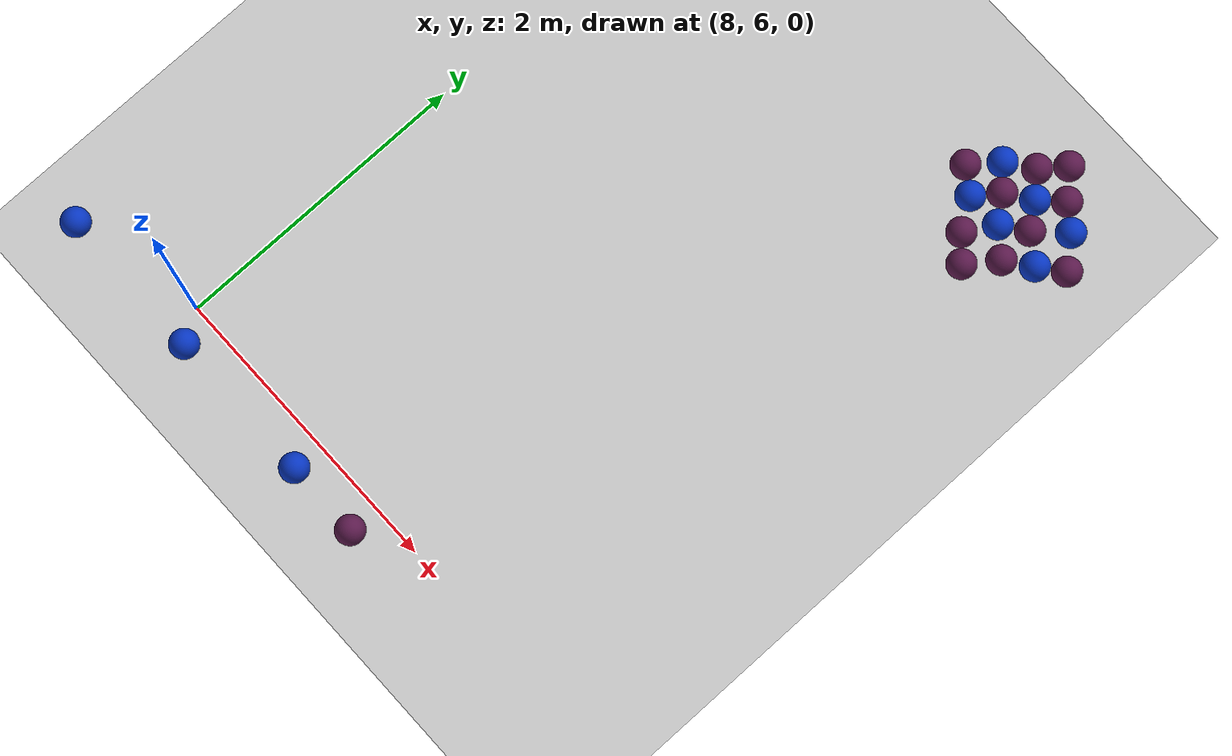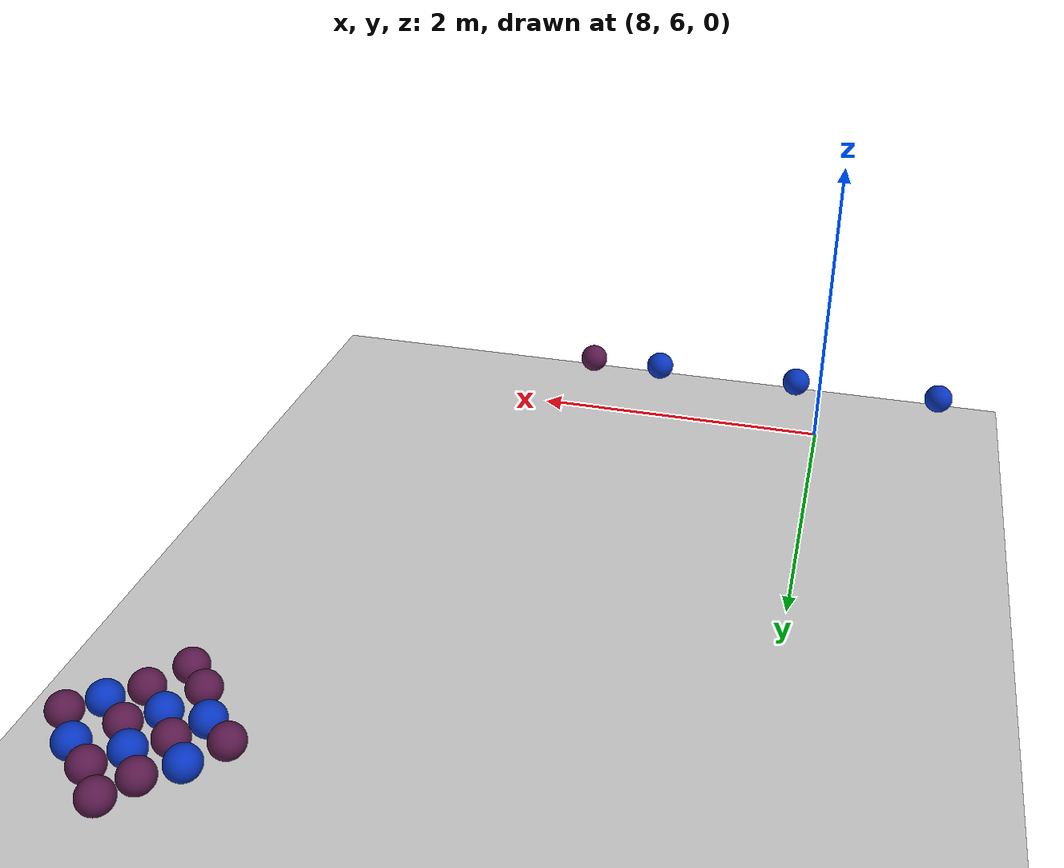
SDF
<sdf version="1.7">
 <world name="default">
  <model name="ground_plane">
   <static>1</static>
   <link name="link">
    <collision name="collision">
     <geometry><plane><normal>0 0 1</normal><size>100 100</size></plane></geometry>
     <surface>
      <contact><collide_bitmask>65535</collide_bitmask></contact>
      <friction><ode><mu>100</mu><mu2>50</mu2></ode></friction>
     </surface>
    </collision>
    <visual name="visual">
     <cast_shadows>0</cast_shadows>
     <geometry><plane><normal>0 0 1</normal><size>100 100</size></plane></geometry>
     <material>
      <script><uri>file://media/materials/scripts/gazebo.material</uri><name>Gazebo/Grey</name></script>
     </material>
    </visual>
   </link>
  </model>
  <model name="ball_empty_clone_9">
   <link name="link_1">
    <inertial>
     <mass>1</mass>
     <inertia>
      <ixx>0.166667</ixx>
      <ixy>0</ixy>
      <ixz>0</ixz>
      <iyy>0.166667</iyy>
      <iyz>0</iyz>
      <izz>0.166667</izz>
     </inertia>
    </inertial>
    <visual name="visual">
     <geometry>
      <mesh>
       <uri>/home/entity014/abu2024_ws/src/abu_description/worlds/ball_empty.dae</uri>
       <scale>1 1 1</scale>
      </mesh>
     </geometry>
    </visual>
    <collision name="collision">
     <geometry>
      <mesh>
       <uri>/home/entity014/abu2024_ws/src/abu_description/worlds/ball_empty.dae</uri>
       <scale>1 1 1</scale>
      </mesh>
     </geometry>
     <surface>
      <friction>
       <ode><mu>1</mu><mu2>1</mu2><fdir1>0 0 0</fdir1><slip1>0</slip1><slip2>0</slip2></ode>
       <torsional>
        <coefficient>1</coefficient>
        <patch_radius>0</patch_radius>
        <surface_radius>0</surface_radius>
        <use_patch_radius>1</use_patch_radius>
        <ode><slip>0</slip></ode>
       </torsional>
      </friction>
      <bounce><restitution_coefficient>0</restitution_coefficient><threshold>1e+06</threshold></bounce>
      <contact>
       <collide_without_contact>0</collide_without_contact>
       <collide_without_contact_bitmask>1</collide_without_contact_bitmask>
       <collide_bitmask>1</collide_bitmask>
       <ode>
        <soft_cfm>0</soft_cfm>
        <soft_erp>0.2</soft_erp>
        <kp>1e+13</kp>
        <kd>1</kd>
        <max_vel>0.01</max_vel>
        <min_depth>0</min_depth>
       </ode>
       <bullet>
        <split_impulse>1</split_impulse>
        <split_impulse_penetration_threshold>-0.01</split_impulse_penetration_threshold>
        <soft_cfm>0</soft_cfm>
        <soft_erp>0.2</soft_erp>
        <kp>1e+13</kp>
        <kd>1</kd>
       </bullet>
      </contact>
     </surface>
    </collision>
   </link>
   <static>0</static>
   <pose>9.68167 5.79272 0.302541 -0.15648 0.3284 -0.083313</pose>
  </model>
  <model name="ball_blue">
   <link name="link_1">
    <inertial>
     <mass>1</mass>
     <inertia>
      <ixx>0.166667</ixx>
      <ixy>0</ixy>
      <ixz>0</ixz>
      <iyy>0.166667</iyy>
      <iyz>0</iyz>
      <izz>0.166667</izz>
     </inertia>
    </inertial>
    <visual name="visual">
     <geometry>
      <mesh>
       <uri>/home/entity014/abu2024_ws/src/abu_description/worlds/ball_blue.dae</uri>
       <scale>1 1 1</scale>
      </mesh>
     </geometry>
    </visual>
    <collision name="collision">
     <geometry>
      <mesh>
       <uri>/home/entity014/abu2024_ws/src/abu_description/worlds/ball_blue.dae</uri>
       <scale>1 1 1</scale>
      </mesh>
     </geometry>
     <surface>
      <friction>
       <ode><mu>1</mu><mu2>1</mu2><fdir1>0 0 0</fdir1><slip1>0</slip1><slip2>0</slip2></ode>
       <torsional>
        <coefficient>1</coefficient>
        <patch_radius>0</patch_radius>
        <surface_radius>0</surface_radius>
        <use_patch_radius>1</use_patch_radius>
        <ode><slip>0</slip></ode>
       </torsional>
      </friction>
      <bounce><restitution_coefficient>0</restitution_coefficient><threshold>1e+06</threshold></bounce>
      <contact>
       <collide_without_contact>0</collide_without_contact>
       <collide_without_contact_bitmask>1</collide_without_contact_bitmask>
       <collide_bitmask>1</collide_bitmask>
       <ode>
        <soft_cfm>0</soft_cfm>
        <soft_erp>0.2</soft_erp>
        <kp>1e+13</kp>
        <kd>1</kd>
        <max_vel>0.01</max_vel>
        <min_depth>0</min_depth>
       </ode>
       <bullet>
        <split_impulse>1</split_impulse>
        <split_impulse_penetration_threshold>-0.01</split_impulse_penetration_threshold>
        <soft_cfm>0</soft_cfm>
        <soft_erp>0.2</soft_erp>
        <kp>1e+13</kp>
        <kd>1</kd>
       </bullet>
      </contact>
     </surface>
    </collision>
   </link>
   <static>0</static>
   <pose>7.18264 5.79369 0.302534 0.095236 -0.074696 0.040586</pose>
  </model>
  <model name="ball_blue_0">
   <link name="link_1">
    <inertial>
     <mass>1</mass>
     <inertia>
      <ixx>0.166667</ixx>
      <ixy>0</ixy>
      <ixz>0</ixz>
      <iyy>0.166667</iyy>
      <iyz>0</iyz>
      <izz>0.166667</izz>
     </inertia>
    </inertial>
    <visual name="visual">
     <geometry>
      <mesh>
       <uri>/home/entity014/abu2024_ws/src/abu_description/worlds/ball_blue.dae</uri>
       <scale>1 1 1</scale>
      </mesh>
     </geometry>
    </visual>
    <collision name="collision">
     <geometry>
      <mesh>
       <uri>/home/entity014/abu2024_ws/src/abu_description/worlds/ball_blue.dae</uri>
       <scale>1 1 1</scale>
      </mesh>
     </geometry>
     <surface>
      <friction>
       <ode><mu>1</mu><mu2>1</mu2><fdir1>0 0 0</fdir1><slip1>0</slip1><slip2>0</slip2></ode>
       <torsional>
        <coefficient>1</coefficient>
        <patch_radius>0</patch_radius>
        <surface_radius>0</surface_radius>
        <use_patch_radius>1</use_patch_radius>
        <ode><slip>0</slip></ode>
       </torsional>
      </friction>
      <bounce><restitution_coefficient>0</restitution_coefficient><threshold>1e+06</threshold></bounce>
      <contact>
       <collide_without_contact>0</collide_without_contact>
       <collide_without_contact_bitmask>1</collide_without_contact_bitmask>
       <collide_bitmask>1</collide_bitmask>
       <ode>
        <soft_cfm>0</soft_cfm>
        <soft_erp>0.2</soft_erp>
        <kp>1e+13</kp>
        <kd>1</kd>
        <max_vel>0.01</max_vel>
        <min_depth>0</min_depth>
       </ode>
       <bullet>
        <split_impulse>1</split_impulse>
        <split_impulse_penetration_threshold>-0.01</split_impulse_penetration_threshold>
        <soft_cfm>0</soft_cfm>
        <soft_erp>0.2</soft_erp>
        <kp>1e+13</kp>
        <kd>1</kd>
       </bullet>
      </contact>
     </surface>
    </collision>
   </link>
   <static>0</static>
   <pose>8.18199 5.79261 0.302561 0.235409 -0.369323 0.277172</pose>
  </model>
  <model name="ball_blue_4">
   <link name="link_1">
    <inertial>
     <mass>1</mass>
     <inertia>
      <ixx>0.166667</ixx>
      <ixy>0</ixy>
      <ixz>0</ixz>
      <iyy>0.166667</iyy>
      <iyz>0</iyz>
      <izz>0.166667</izz>
     </inertia>
    </inertial>
    <visual name="visual">
     <geometry>
      <mesh>
       <uri>/home/entity014/abu2024_ws/src/abu_description/worlds/ball_blue.dae</uri>
       <scale>1 1 1</scale>
      </mesh>
     </geometry>
    </visual>
    <collision name="collision">
     <geometry>
      <mesh>
       <uri>/home/entity014/abu2024_ws/src/abu_description/worlds/ball_blue.dae</uri>
       <scale>1 1 1</scale>
      </mesh>
     </geometry>
     <surface>
      <friction>
       <ode><mu>1</mu><mu2>1</mu2><fdir1>0 0 0</fdir1><slip1>0</slip1><slip2>0</slip2></ode>
       <torsional>
        <coefficient>1</coefficient>
        <patch_radius>0</patch_radius>
        <surface_radius>0</surface_radius>
        <use_patch_radius>1</use_patch_radius>
        <ode><slip>0</slip></ode>
       </torsional>
      </friction>
      <bounce><restitution_coefficient>0</restitution_coefficient><threshold>1e+06</threshold></bounce>
      <contact>
       <collide_without_contact>0</collide_without_contact>
       <collide_without_contact_bitmask>1</collide_without_contact_bitmask>
       <collide_bitmask>1</collide_bitmask>
       <ode>
        <soft_cfm>0</soft_cfm>
        <soft_erp>0.2</soft_erp>
        <kp>1e+13</kp>
        <kd>1</kd>
        <max_vel>0.01</max_vel>
        <min_depth>0</min_depth>
       </ode>
       <bullet>
        <split_impulse>1</split_impulse>
        <split_impulse_penetration_threshold>-0.01</split_impulse_penetration_threshold>
        <soft_cfm>0</soft_cfm>
        <soft_erp>0.2</soft_erp>
        <kp>1e+13</kp>
        <kd>1</kd>
       </bullet>
      </contact>
     </surface>
    </collision>
   </link>
   <static>0</static>
   <pose>9.18234 5.79125 0.302543 0.200935 0.01564 -0.50788</pose>
  </model>
  <model name="ball_empty_0">
   <link name="link_1">
    <inertial>
     <mass>1</mass>
     <inertia>
      <ixx>0.166667</ixx>
      <ixy>0</ixy>
      <ixz>0</ixz>
      <iyy>0.166667</iyy>
      <iyz>0</iyz>
      <izz>0.166667</izz>
     </inertia>
    </inertial>
    <visual name="visual">
     <geometry>
      <mesh>
       <uri>/home/entity014/abu2024_ws/src/abu_description/worlds/ball_empty.dae</uri>
       <scale>1 1 1</scale>
      </mesh>
     </geometry>
    </visual>
    <collision name="collision">
     <geometry>
      <mesh>
       <uri>/home/entity014/abu2024_ws/src/abu_description/worlds/ball_empty.dae</uri>
       <scale>1 1 1</scale>
      </mesh>
     </geometry>
     <surface>
      <friction>
       <ode><mu>1</mu><mu2>1</mu2><fdir1>0 0 0</fdir1><slip1>0</slip1><slip2>0</slip2></ode>
       <torsional>
        <coefficient>1</coefficient>
        <patch_radius>0</patch_radius>
        <surface_radius>0</surface_radius>
        <use_patch_radius>1</use_patch_radius>
        <ode><slip>0</slip></ode>
       </torsional>
      </friction>
      <bounce><restitution_coefficient>0</restitution_coefficient><threshold>1e+06</threshold></bounce>
      <contact>
       <collide_without_contact>0</collide_without_contact>
       <collide_without_contact_bitmask>1</collide_without_contact_bitmask>
       <collide_bitmask>1</collide_bitmask>
       <ode>
        <soft_cfm>0</soft_cfm>
        <soft_erp>0.2</soft_erp>
        <kp>1e+13</kp>
        <kd>1</kd>
        <max_vel>0.01</max_vel>
        <min_depth>0</min_depth>
       </ode>
       <bullet>
        <split_impulse>1</split_impulse>
        <split_impulse_penetration_threshold>-0.01</split_impulse_penetration_threshold>
        <soft_cfm>0</soft_cfm>
        <soft_erp>0.2</soft_erp>
        <kp>1e+13</kp>
        <kd>1</kd>
       </bullet>
      </contact>
     </surface>
    </collision>
   </link>
   <static>0</static>
   <pose>10.9288 9.56235 0.322582 0.710093 -0.066061 -0.049861</pose>
  </model>
  <model name="ball_blue_5">
   <link name="link_1">
    <inertial>
     <mass>1</mass>
     <inertia>
      <ixx>0.166667</ixx>
      <ixy>0</ixy>
      <ixz>0</ixz>
      <iyy>0.166667</iyy>
      <iyz>0</iyz>
      <izz>0.166667</izz>
     </inertia>
    </inertial>
    <visual name="visual">
     <geometry>
      <mesh>
       <uri>/home/entity014/abu2024_ws/src/abu_description/worlds/ball_blue.dae</uri>
       <scale>1 1 1</scale>
      </mesh>
     </geometry>
    </visual>
    <collision name="collision">
     <geometry>
      <mesh>
       <uri>/home/entity014/abu2024_ws/src/abu_description/worlds/ball_blue.dae</uri>
       <scale>1 1 1</scale>
      </mesh>
     </geometry>
     <surface>
      <friction>
       <ode><mu>1</mu><mu2>1</mu2><fdir1>0 0 0</fdir1><slip1>0</slip1><slip2>0</slip2></ode>
       <torsional>
        <coefficient>1</coefficient>
        <patch_radius>0</patch_radius>
        <surface_radius>0</surface_radius>
        <use_patch_radius>1</use_patch_radius>
        <ode><slip>0</slip></ode>
       </torsional>
      </friction>
      <bounce><restitution_coefficient>0</restitution_coefficient><threshold>1e+06</threshold></bounce>
      <contact>
       <collide_without_contact>0</collide_without_contact>
       <collide_without_contact_bitmask>1</collide_without_contact_bitmask>
       <collide_bitmask>1</collide_bitmask>
       <ode>
        <soft_cfm>0</soft_cfm>
        <soft_erp>0.2</soft_erp>
        <kp>1e+13</kp>
        <kd>1</kd>
        <max_vel>0.01</max_vel>
        <min_depth>0</min_depth>
       </ode>
       <bullet>
        <split_impulse>1</split_impulse>
        <split_impulse_penetration_threshold>-0.01</split_impulse_penetration_threshold>
        <soft_cfm>0</soft_cfm>
        <soft_erp>0.2</soft_erp>
        <kp>1e+13</kp>
        <kd>1</kd>
       </bullet>
      </contact>
     </surface>
    </collision>
   </link>
   <static>0</static>
   <pose>11.2334 9.87877 0.32255 0.148548 0.129016 -0.348307</pose>
  </model>
  <model name="ball_empty_0_clone">
   <link name="link_1">
    <inertial>
     <mass>1</mass>
     <inertia>
      <ixx>0.166667</ixx>
      <ixy>0</ixy>
      <ixz>0</ixz>
      <iyy>0.166667</iyy>
      <iyz>0</iyz>
      <izz>0.166667</izz>
     </inertia>
    </inertial>
    <visual name="visual">
     <geometry>
      <mesh>
       <uri>/home/entity014/abu2024_ws/src/abu_description/worlds/ball_empty.dae</uri>
       <scale>1 1 1</scale>
      </mesh>
     </geometry>
    </visual>
    <collision name="collision">
     <geometry>
      <mesh>
       <uri>/home/entity014/abu2024_ws/src/abu_description/worlds/ball_empty.dae</uri>
       <scale>1 1 1</scale>
      </mesh>
     </geometry>
     <surface>
      <friction>
       <ode><mu>1</mu><mu2>1</mu2><fdir1>0 0 0</fdir1><slip1>0</slip1><slip2>0</slip2></ode>
       <torsional>
        <coefficient>1</coefficient>
        <patch_radius>0</patch_radius>
        <surface_radius>0</surface_radius>
        <use_patch_radius>1</use_patch_radius>
        <ode><slip>0</slip></ode>
       </torsional>
      </friction>
      <bounce><restitution_coefficient>0</restitution_coefficient><threshold>1e+06</threshold></bounce>
      <contact>
       <collide_without_contact>0</collide_without_contact>
       <collide_without_contact_bitmask>1</collide_without_contact_bitmask>
       <collide_bitmask>1</collide_bitmask>
       <ode>
        <soft_cfm>0</soft_cfm>
        <soft_erp>0.2</soft_erp>
        <kp>1e+13</kp>
        <kd>1</kd>
        <max_vel>0.01</max_vel>
        <min_depth>0</min_depth>
       </ode>
       <bullet>
        <split_impulse>1</split_impulse>
        <split_impulse_penetration_threshold>-0.01</split_impulse_penetration_threshold>
        <soft_cfm>0</soft_cfm>
        <soft_erp>0.2</soft_erp>
        <kp>1e+13</kp>
        <kd>1</kd>
       </bullet>
      </contact>
     </surface>
    </collision>
   </link>
   <static>0</static>
   <pose>10.786 9.69665 0.322547 0.611179 -0.013699 0.025775</pose>
  </model>
  <model name="ball_empty_0_clone_0">
   <link name="link_1">
    <inertial>
     <mass>1</mass>
     <inertia>
      <ixx>0.166667</ixx>
      <ixy>0</ixy>
      <ixz>0</ixz>
      <iyy>0.166667</iyy>
      <iyz>0</iyz>
      <izz>0.166667</izz>
     </inertia>
    </inertial>
    <visual name="visual">
     <geometry>
      <mesh>
       <uri>/home/entity014/abu2024_ws/src/abu_description/worlds/ball_empty.dae</uri>
       <scale>1 1 1</scale>
      </mesh>
     </geometry>
    </visual>
    <collision name="collision">
     <geometry>
      <mesh>
       <uri>/home/entity014/abu2024_ws/src/abu_description/worlds/ball_empty.dae</uri>
       <scale>1 1 1</scale>
      </mesh>
     </geometry>
     <surface>
      <friction>
       <ode><mu>1</mu><mu2>1</mu2><fdir1>0 0 0</fdir1><slip1>0</slip1><slip2>0</slip2></ode>
       <torsional>
        <coefficient>1</coefficient>
        <patch_radius>0</patch_radius>
        <surface_radius>0</surface_radius>
        <use_patch_radius>1</use_patch_radius>
        <ode><slip>0</slip></ode>
       </torsional>
      </friction>
      <bounce><restitution_coefficient>0</restitution_coefficient><threshold>1e+06</threshold></bounce>
      <contact>
       <collide_without_contact>0</collide_without_contact>
       <collide_without_contact_bitmask>1</collide_without_contact_bitmask>
       <collide_bitmask>1</collide_bitmask>
       <ode>
        <soft_cfm>0</soft_cfm>
        <soft_erp>0.2</soft_erp>
        <kp>1e+13</kp>
        <kd>1</kd>
        <max_vel>0.01</max_vel>
        <min_depth>0</min_depth>
       </ode>
       <bullet>
        <split_impulse>1</split_impulse>
        <split_impulse_penetration_threshold>-0.01</split_impulse_penetration_threshold>
        <soft_cfm>0</soft_cfm>
        <soft_erp>0.2</soft_erp>
        <kp>1e+13</kp>
        <kd>1</kd>
       </bullet>
      </contact>
     </surface>
    </collision>
   </link>
   <static>0</static>
   <pose>11.0709 9.75637 0.322546 0.024183 -0.032962 -0.047598</pose>
  </model>
  <model name="ball_empty_0_clone_1">
   <link name="link_1">
    <inertial>
     <mass>1</mass>
     <inertia>
      <ixx>0.166667</ixx>
      <ixy>0</ixy>
      <ixz>0</ixz>
      <iyy>0.166667</iyy>
      <iyz>0</iyz>
      <izz>0.166667</izz>
     </inertia>
    </inertial>
    <visual name="visual">
     <geometry>
      <mesh>
       <uri>/home/entity014/abu2024_ws/src/abu_description/worlds/ball_empty.dae</uri>
       <scale>1 1 1</scale>
      </mesh>
     </geometry>
    </visual>
    <collision name="collision">
     <geometry>
      <mesh>
       <uri>/home/entity014/abu2024_ws/src/abu_description/worlds/ball_empty.dae</uri>
       <scale>1 1 1</scale>
      </mesh>
     </geometry>
     <surface>
      <friction>
       <ode><mu>1</mu><mu2>1</mu2><fdir1>0 0 0</fdir1><slip1>0</slip1><slip2>0</slip2></ode>
       <torsional>
        <coefficient>1</coefficient>
        <patch_radius>0</patch_radius>
        <surface_radius>0</surface_radius>
        <use_patch_radius>1</use_patch_radius>
        <ode><slip>0</slip></ode>
       </torsional>
      </friction>
      <bounce><restitution_coefficient>0</restitution_coefficient><threshold>1e+06</threshold></bounce>
      <contact>
       <collide_without_contact>0</collide_without_contact>
       <collide_without_contact_bitmask>1</collide_without_contact_bitmask>
       <collide_bitmask>1</collide_bitmask>
       <ode>
        <soft_cfm>0</soft_cfm>
        <soft_erp>0.2</soft_erp>
        <kp>1e+13</kp>
        <kd>1</kd>
        <max_vel>0.01</max_vel>
        <min_depth>0</min_depth>
       </ode>
       <bullet>
        <split_impulse>1</split_impulse>
        <split_impulse_penetration_threshold>-0.01</split_impulse_penetration_threshold>
        <soft_cfm>0</soft_cfm>
        <soft_erp>0.2</soft_erp>
        <kp>1e+13</kp>
        <kd>1</kd>
       </bullet>
      </contact>
     </surface>
    </collision>
   </link>
   <static>0</static>
   <pose>10.5001 9.99991 0.322529 0.350061 -0.096734 0.760732</pose>
  </model>
  <model name="ball_empty_0_clone_2">
   <link name="link_1">
    <inertial>
     <mass>1</mass>
     <inertia>
      <ixx>0.166667</ixx>
      <ixy>0</ixy>
      <ixz>0</ixz>
      <iyy>0.166667</iyy>
      <iyz>0</iyz>
      <izz>0.166667</izz>
     </inertia>
    </inertial>
    <visual name="visual">
     <geometry>
      <mesh>
       <uri>/home/entity014/abu2024_ws/src/abu_description/worlds/ball_empty.dae</uri>
       <scale>1 1 1</scale>
      </mesh>
     </geometry>
    </visual>
    <collision name="collision">
     <geometry>
      <mesh>
       <uri>/home/entity014/abu2024_ws/src/abu_description/worlds/ball_empty.dae</uri>
       <scale>1 1 1</scale>
      </mesh>
     </geometry>
     <surface>
      <friction>
       <ode><mu>1</mu><mu2>1</mu2><fdir1>0 0 0</fdir1><slip1>0</slip1><slip2>0</slip2></ode>
       <torsional>
        <coefficient>1</coefficient>
        <patch_radius>0</patch_radius>
        <surface_radius>0</surface_radius>
        <use_patch_radius>1</use_patch_radius>
        <ode><slip>0</slip></ode>
       </torsional>
      </friction>
      <bounce><restitution_coefficient>0</restitution_coefficient><threshold>1e+06</threshold></bounce>
      <contact>
       <collide_without_contact>0</collide_without_contact>
       <collide_without_contact_bitmask>1</collide_without_contact_bitmask>
       <collide_bitmask>1</collide_bitmask>
       <ode>
        <soft_cfm>0</soft_cfm>
        <soft_erp>0.2</soft_erp>
        <kp>1e+13</kp>
        <kd>1</kd>
        <max_vel>0.01</max_vel>
        <min_depth>0</min_depth>
       </ode>
       <bullet>
        <split_impulse>1</split_impulse>
        <split_impulse_penetration_threshold>-0.01</split_impulse_penetration_threshold>
        <soft_cfm>0</soft_cfm>
        <soft_erp>0.2</soft_erp>
        <kp>1e+13</kp>
        <kd>1</kd>
       </bullet>
      </contact>
     </surface>
    </collision>
   </link>
   <static>0</static>
   <pose>10.774 10.0447 0.322543 -0.100905 -0.06669 0.613935</pose>
  </model>
  <model name="ball_empty_0_clone_3">
   <link name="link_1">
    <inertial>
     <mass>1</mass>
     <inertia>
      <ixx>0.166667</ixx>
      <ixy>0</ixy>
      <ixz>0</ixz>
      <iyy>0.166667</iyy>
      <iyz>0</iyz>
      <izz>0.166667</izz>
     </inertia>
    </inertial>
    <visual name="visual">
     <geometry>
      <mesh>
       <uri>/home/entity014/abu2024_ws/src/abu_description/worlds/ball_empty.dae</uri>
       <scale>1 1 1</scale>
      </mesh>
     </geometry>
    </visual>
    <collision name="collision">
     <geometry>
      <mesh>
       <uri>/home/entity014/abu2024_ws/src/abu_description/worlds/ball_empty.dae</uri>
       <scale>1 1 1</scale>
      </mesh>
     </geometry>
     <surface>
      <friction>
       <ode><mu>1</mu><mu2>1</mu2><fdir1>0 0 0</fdir1><slip1>0</slip1><slip2>0</slip2></ode>
       <torsional>
        <coefficient>1</coefficient>
        <patch_radius>0</patch_radius>
        <surface_radius>0</surface_radius>
        <use_patch_radius>1</use_patch_radius>
        <ode><slip>0</slip></ode>
       </torsional>
      </friction>
      <bounce><restitution_coefficient>0</restitution_coefficient><threshold>1e+06</threshold></bounce>
      <contact>
       <collide_without_contact>0</collide_without_contact>
       <collide_without_contact_bitmask>1</collide_without_contact_bitmask>
       <collide_bitmask>1</collide_bitmask>
       <ode>
        <soft_cfm>0</soft_cfm>
        <soft_erp>0.2</soft_erp>
        <kp>1e+13</kp>
        <kd>1</kd>
        <max_vel>0.01</max_vel>
        <min_depth>0</min_depth>
       </ode>
       <bullet>
        <split_impulse>1</split_impulse>
        <split_impulse_penetration_threshold>-0.01</split_impulse_penetration_threshold>
        <soft_cfm>0</soft_cfm>
        <soft_erp>0.2</soft_erp>
        <kp>1e+13</kp>
        <kd>1</kd>
       </bullet>
      </contact>
     </surface>
    </collision>
   </link>
   <static>0</static>
   <pose>11.0566 10.0069 0.32261 0.255107 0.214381 -1.62078</pose>
  </model>
  <model name="ball_empty_0_clone_4">
   <link name="link_1">
    <inertial>
     <mass>1</mass>
     <inertia>
      <ixx>0.166667</ixx>
      <ixy>0</ixy>
      <ixz>0</ixz>
      <iyy>0.166667</iyy>
      <iyz>0</iyz>
      <izz>0.166667</izz>
     </inertia>
    </inertial>
    <visual name="visual">
     <geometry>
      <mesh>
       <uri>/home/entity014/abu2024_ws/src/abu_description/worlds/ball_empty.dae</uri>
       <scale>1 1 1</scale>
      </mesh>
     </geometry>
    </visual>
    <collision name="collision">
     <geometry>
      <mesh>
       <uri>/home/entity014/abu2024_ws/src/abu_description/worlds/ball_empty.dae</uri>
       <scale>1 1 1</scale>
      </mesh>
     </geometry>
     <surface>
      <friction>
       <ode><mu>1</mu><mu2>1</mu2><fdir1>0 0 0</fdir1><slip1>0</slip1><slip2>0</slip2></ode>
       <torsional>
        <coefficient>1</coefficient>
        <patch_radius>0</patch_radius>
        <surface_radius>0</surface_radius>
        <use_patch_radius>1</use_patch_radius>
        <ode><slip>0</slip></ode>
       </torsional>
      </friction>
      <bounce><restitution_coefficient>0</restitution_coefficient><threshold>1e+06</threshold></bounce>
      <contact>
       <collide_without_contact>0</collide_without_contact>
       <collide_without_contact_bitmask>1</collide_without_contact_bitmask>
       <collide_bitmask>1</collide_bitmask>
       <ode>
        <soft_cfm>0</soft_cfm>
        <soft_erp>0.2</soft_erp>
        <kp>1e+13</kp>
        <kd>1</kd>
        <max_vel>0.01</max_vel>
        <min_depth>0</min_depth>
       </ode>
       <bullet>
        <split_impulse>1</split_impulse>
        <split_impulse_penetration_threshold>-0.01</split_impulse_penetration_threshold>
        <soft_cfm>0</soft_cfm>
        <soft_erp>0.2</soft_erp>
        <kp>1e+13</kp>
        <kd>1</kd>
       </bullet>
      </contact>
     </surface>
    </collision>
   </link>
   <static>0</static>
   <pose>11.385 9.99919 0.32262 0.371162 0.324716 -0.169205</pose>
  </model>
  <model name="ball_empty_0_clone_5">
   <link name="link_1">
    <inertial>
     <mass>1</mass>
     <inertia>
      <ixx>0.166667</ixx>
      <ixy>0</ixy>
      <ixz>0</ixz>
      <iyy>0.166667</iyy>
      <iyz>0</iyz>
      <izz>0.166667</izz>
     </inertia>
    </inertial>
    <visual name="visual">
     <geometry>
      <mesh>
       <uri>/home/entity014/abu2024_ws/src/abu_description/worlds/ball_empty.dae</uri>
       <scale>1 1 1</scale>
      </mesh>
     </geometry>
    </visual>
    <collision name="collision">
     <geometry>
      <mesh>
       <uri>/home/entity014/abu2024_ws/src/abu_description/worlds/ball_empty.dae</uri>
       <scale>1 1 1</scale>
      </mesh>
     </geometry>
     <surface>
      <friction>
       <ode><mu>1</mu><mu2>1</mu2><fdir1>0 0 0</fdir1><slip1>0</slip1><slip2>0</slip2></ode>
       <torsional>
        <coefficient>1</coefficient>
        <patch_radius>0</patch_radius>
        <surface_radius>0</surface_radius>
        <use_patch_radius>1</use_patch_radius>
        <ode><slip>0</slip></ode>
       </torsional>
      </friction>
      <bounce><restitution_coefficient>0</restitution_coefficient><threshold>1e+06</threshold></bounce>
      <contact>
       <collide_without_contact>0</collide_without_contact>
       <collide_without_contact_bitmask>1</collide_without_contact_bitmask>
       <collide_bitmask>1</collide_bitmask>
       <ode>
        <soft_cfm>0</soft_cfm>
        <soft_erp>0.2</soft_erp>
        <kp>1e+13</kp>
        <kd>1</kd>
        <max_vel>0.01</max_vel>
        <min_depth>0</min_depth>
       </ode>
       <bullet>
        <split_impulse>1</split_impulse>
        <split_impulse_penetration_threshold>-0.01</split_impulse_penetration_threshold>
        <soft_cfm>0</soft_cfm>
        <soft_erp>0.2</soft_erp>
        <kp>1e+13</kp>
        <kd>1</kd>
       </bullet>
      </contact>
     </surface>
    </collision>
   </link>
   <static>0</static>
   <pose>10.8077 10.3019 0.322552 0.185511 0.209982 0.080789</pose>
  </model>
  <model name="ball_empty_0_clone_6">
   <link name="link_1">
    <inertial>
     <mass>1</mass>
     <inertia>
      <ixx>0.166667</ixx>
      <ixy>0</ixy>
      <ixz>0</ixz>
      <iyy>0.166667</iyy>
      <iyz>0</iyz>
      <izz>0.166667</izz>
     </inertia>
    </inertial>
    <visual name="visual">
     <geometry>
      <mesh>
       <uri>/home/entity014/abu2024_ws/src/abu_description/worlds/ball_empty.dae</uri>
       <scale>1 1 1</scale>
      </mesh>
     </geometry>
    </visual>
    <collision name="collision">
     <geometry>
      <mesh>
       <uri>/home/entity014/abu2024_ws/src/abu_description/worlds/ball_empty.dae</uri>
       <scale>1 1 1</scale>
      </mesh>
     </geometry>
     <surface>
      <friction>
       <ode><mu>1</mu><mu2>1</mu2><fdir1>0 0 0</fdir1><slip1>0</slip1><slip2>0</slip2></ode>
       <torsional>
        <coefficient>1</coefficient>
        <patch_radius>0</patch_radius>
        <surface_radius>0</surface_radius>
        <use_patch_radius>1</use_patch_radius>
        <ode><slip>0</slip></ode>
       </torsional>
      </friction>
      <bounce><restitution_coefficient>0</restitution_coefficient><threshold>1e+06</threshold></bounce>
      <contact>
       <collide_without_contact>0</collide_without_contact>
       <collide_without_contact_bitmask>1</collide_without_contact_bitmask>
       <collide_bitmask>1</collide_bitmask>
       <ode>
        <soft_cfm>0</soft_cfm>
        <soft_erp>0.2</soft_erp>
        <kp>1e+13</kp>
        <kd>1</kd>
        <max_vel>0.01</max_vel>
        <min_depth>0</min_depth>
       </ode>
       <bullet>
        <split_impulse>1</split_impulse>
        <split_impulse_penetration_threshold>-0.01</split_impulse_penetration_threshold>
        <soft_cfm>0</soft_cfm>
        <soft_erp>0.2</soft_erp>
        <kp>1e+13</kp>
        <kd>1</kd>
       </bullet>
      </contact>
     </surface>
    </collision>
   </link>
   <static>0</static>
   <pose>11.0759 10.2961 0.322569 0.277125 0.088515 0.004511</pose>
  </model>
  <model name="ball_empty_0_clone_7">
   <link name="link_1">
    <inertial>
     <mass>1</mass>
     <inertia>
      <ixx>0.166667</ixx>
      <ixy>0</ixy>
      <ixz>0</ixz>
      <iyy>0.166667</iyy>
      <iyz>0</iyz>
      <izz>0.166667</izz>
     </inertia>
    </inertial>
    <visual name="visual">
     <geometry>
      <mesh>
       <uri>/home/entity014/abu2024_ws/src/abu_description/worlds/ball_empty.dae</uri>
       <scale>1 1 1</scale>
      </mesh>
     </geometry>
    </visual>
    <collision name="collision">
     <geometry>
      <mesh>
       <uri>/home/entity014/abu2024_ws/src/abu_description/worlds/ball_empty.dae</uri>
       <scale>1 1 1</scale>
      </mesh>
     </geometry>
     <surface>
      <friction>
       <ode><mu>1</mu><mu2>1</mu2><fdir1>0 0 0</fdir1><slip1>0</slip1><slip2>0</slip2></ode>
       <torsional>
        <coefficient>1</coefficient>
        <patch_radius>0</patch_radius>
        <surface_radius>0</surface_radius>
        <use_patch_radius>1</use_patch_radius>
        <ode><slip>0</slip></ode>
       </torsional>
      </friction>
      <bounce><restitution_coefficient>0</restitution_coefficient><threshold>1e+06</threshold></bounce>
      <contact>
       <collide_without_contact>0</collide_without_contact>
       <collide_without_contact_bitmask>1</collide_without_contact_bitmask>
       <collide_bitmask>1</collide_bitmask>
       <ode>
        <soft_cfm>0</soft_cfm>
        <soft_erp>0.2</soft_erp>
        <kp>1e+13</kp>
        <kd>1</kd>
        <max_vel>0.01</max_vel>
        <min_depth>0</min_depth>
       </ode>
       <bullet>
        <split_impulse>1</split_impulse>
        <split_impulse_penetration_threshold>-0.01</split_impulse_penetration_threshold>
        <soft_cfm>0</soft_cfm>
        <soft_erp>0.2</soft_erp>
        <kp>1e+13</kp>
        <kd>1</kd>
       </bullet>
      </contact>
     </surface>
    </collision>
   </link>
   <static>0</static>
   <pose>10.9258 10.4568 0.322594 0.018922 -0.003437 -1e-05</pose>
  </model>
  <model name="ball_blue_5_clone">
   <link name="link_1">
    <inertial>
     <mass>1</mass>
     <inertia>
      <ixx>0.166667</ixx>
      <ixy>0</ixy>
      <ixz>0</ixz>
      <iyy>0.166667</iyy>
      <iyz>0</iyz>
      <izz>0.166667</izz>
     </inertia>
    </inertial>
    <visual name="visual">
     <geometry>
      <mesh>
       <uri>/home/entity014/abu2024_ws/src/abu_description/worlds/ball_blue.dae</uri>
       <scale>1 1 1</scale>
      </mesh>
     </geometry>
    </visual>
    <collision name="collision">
     <geometry>
      <mesh>
       <uri>/home/entity014/abu2024_ws/src/abu_description/worlds/ball_blue.dae</uri>
       <scale>1 1 1</scale>
      </mesh>
     </geometry>
     <surface>
      <friction>
       <ode><mu>1</mu><mu2>1</mu2><fdir1>0 0 0</fdir1><slip1>0</slip1><slip2>0</slip2></ode>
       <torsional>
        <coefficient>1</coefficient>
        <patch_radius>0</patch_radius>
        <surface_radius>0</surface_radius>
        <use_patch_radius>1</use_patch_radius>
        <ode><slip>0</slip></ode>
       </torsional>
      </friction>
      <bounce><restitution_coefficient>0</restitution_coefficient><threshold>1e+06</threshold></bounce>
      <contact>
       <collide_without_contact>0</collide_without_contact>
       <collide_without_contact_bitmask>1</collide_without_contact_bitmask>
       <collide_bitmask>1</collide_bitmask>
       <ode>
        <soft_cfm>0</soft_cfm>
        <soft_erp>0.2</soft_erp>
        <kp>1e+13</kp>
        <kd>1</kd>
        <max_vel>0.01</max_vel>
        <min_depth>0</min_depth>
       </ode>
       <bullet>
        <split_impulse>1</split_impulse>
        <split_impulse_penetration_threshold>-0.01</split_impulse_penetration_threshold>
        <soft_cfm>0</soft_cfm>
        <soft_erp>0.2</soft_erp>
        <kp>1e+13</kp>
        <kd>1</kd>
       </bullet>
      </contact>
     </surface>
    </collision>
   </link>
   <static>0</static>
   <pose>10.8995 9.89068 0.322559 -0.024391 -0.204505 0.433781</pose>
  </model>
  <model name="ball_blue_5_clone_0">
   <link name="link_1">
    <inertial>
     <mass>1</mass>
     <inertia>
      <ixx>0.166667</ixx>
      <ixy>0</ixy>
      <ixz>0</ixz>
      <iyy>0.166667</iyy>
      <iyz>0</iyz>
      <izz>0.166667</izz>
     </inertia>
    </inertial>
    <visual name="visual">
     <geometry>
      <mesh>
       <uri>/home/entity014/abu2024_ws/src/abu_description/worlds/ball_blue.dae</uri>
       <scale>1 1 1</scale>
      </mesh>
     </geometry>
    </visual>
    <collision name="collision">
     <geometry>
      <mesh>
       <uri>/home/entity014/abu2024_ws/src/abu_description/worlds/ball_blue.dae</uri>
       <scale>1 1 1</scale>
      </mesh>
     </geometry>
     <surface>
      <friction>
       <ode><mu>1</mu><mu2>1</mu2><fdir1>0 0 0</fdir1><slip1>0</slip1><slip2>0</slip2></ode>
       <torsional>
        <coefficient>1</coefficient>
        <patch_radius>0</patch_radius>
        <surface_radius>0</surface_radius>
        <use_patch_radius>1</use_patch_radius>
        <ode><slip>0</slip></ode>
       </torsional>
      </friction>
      <bounce><restitution_coefficient>0</restitution_coefficient><threshold>1e+06</threshold></bounce>
      <contact>
       <collide_without_contact>0</collide_without_contact>
       <collide_without_contact_bitmask>1</collide_without_contact_bitmask>
       <collide_bitmask>1</collide_bitmask>
       <ode>
        <soft_cfm>0</soft_cfm>
        <soft_erp>0.2</soft_erp>
        <kp>1e+13</kp>
        <kd>1</kd>
        <max_vel>0.01</max_vel>
        <min_depth>0</min_depth>
       </ode>
       <bullet>
        <split_impulse>1</split_impulse>
        <split_impulse_penetration_threshold>-0.01</split_impulse_penetration_threshold>
        <soft_cfm>0</soft_cfm>
        <soft_erp>0.2</soft_erp>
        <kp>1e+13</kp>
        <kd>1</kd>
       </bullet>
      </contact>
     </surface>
    </collision>
   </link>
   <static>0</static>
   <pose>10.6592 9.88874 0.322527 0.236105 0.277902 -0.138278</pose>
  </model>
  <model name="ball_blue_5_clone_1">
   <link name="link_1">
    <inertial>
     <mass>1</mass>
     <inertia>
      <ixx>0.166667</ixx>
      <ixy>0</ixy>
      <ixz>0</ixz>
      <iyy>0.166667</iyy>
      <iyz>0</iyz>
      <izz>0.166667</izz>
     </inertia>
    </inertial>
    <visual name="visual">
     <geometry>
      <mesh>
       <uri>/home/entity014/abu2024_ws/src/abu_description/worlds/ball_blue.dae</uri>
       <scale>1 1 1</scale>
      </mesh>
     </geometry>
    </visual>
    <collision name="collision">
     <geometry>
      <mesh>
       <uri>/home/entity014/abu2024_ws/src/abu_description/worlds/ball_blue.dae</uri>
       <scale>1 1 1</scale>
      </mesh>
     </geometry>
     <surface>
      <friction>
       <ode><mu>1</mu><mu2>1</mu2><fdir1>0 0 0</fdir1><slip1>0</slip1><slip2>0</slip2></ode>
       <torsional>
        <coefficient>1</coefficient>
        <patch_radius>0</patch_radius>
        <surface_radius>0</surface_radius>
        <use_patch_radius>1</use_patch_radius>
        <ode><slip>0</slip></ode>
       </torsional>
      </friction>
      <bounce><restitution_coefficient>0</restitution_coefficient><threshold>1e+06</threshold></bounce>
      <contact>
       <collide_without_contact>0</collide_without_contact>
       <collide_without_contact_bitmask>1</collide_without_contact_bitmask>
       <collide_bitmask>1</collide_bitmask>
       <ode>
        <soft_cfm>0</soft_cfm>
        <soft_erp>0.2</soft_erp>
        <kp>1e+13</kp>
        <kd>1</kd>
        <max_vel>0.01</max_vel>
        <min_depth>0</min_depth>
       </ode>
       <bullet>
        <split_impulse>1</split_impulse>
        <split_impulse_penetration_threshold>-0.01</split_impulse_penetration_threshold>
        <soft_cfm>0</soft_cfm>
        <soft_erp>0.2</soft_erp>
        <kp>1e+13</kp>
        <kd>1</kd>
       </bullet>
      </contact>
     </surface>
    </collision>
   </link>
   <static>0</static>
   <pose>10.638 10.177 0.32254 0.054703 -0.105961 -0.24948</pose>
  </model>
  <model name="ball_blue_5_clone_2">
   <link name="link_1">
    <inertial>
     <mass>1</mass>
     <inertia>
      <ixx>0.166667</ixx>
      <ixy>0</ixy>
      <ixz>0</ixz>
      <iyy>0.166667</iyy>
      <iyz>0</iyz>
      <izz>0.166667</izz>
     </inertia>
    </inertial>
    <visual name="visual">
     <geometry>
      <mesh>
       <uri>/home/entity014/abu2024_ws/src/abu_description/worlds/ball_blue.dae</uri>
       <scale>1 1 1</scale>
      </mesh>
     </geometry>
    </visual>
    <collision name="collision">
     <geometry>
      <mesh>
       <uri>/home/entity014/abu2024_ws/src/abu_description/worlds/ball_blue.dae</uri>
       <scale>1 1 1</scale>
      </mesh>
     </geometry>
     <surface>
      <friction>
       <ode><mu>1</mu><mu2>1</mu2><fdir1>0 0 0</fdir1><slip1>0</slip1><slip2>0</slip2></ode>
       <torsional>
        <coefficient>1</coefficient>
        <patch_radius>0</patch_radius>
        <surface_radius>0</surface_radius>
        <use_patch_radius>1</use_patch_radius>
        <ode><slip>0</slip></ode>
       </torsional>
      </friction>
      <bounce><restitution_coefficient>0</restitution_coefficient><threshold>1e+06</threshold></bounce>
      <contact>
       <collide_without_contact>0</collide_without_contact>
       <collide_without_contact_bitmask>1</collide_without_contact_bitmask>
       <collide_bitmask>1</collide_bitmask>
       <ode>
        <soft_cfm>0</soft_cfm>
        <soft_erp>0.2</soft_erp>
        <kp>1e+13</kp>
        <kd>1</kd>
        <max_vel>0.01</max_vel>
        <min_depth>0</min_depth>
       </ode>
       <bullet>
        <split_impulse>1</split_impulse>
        <split_impulse_penetration_threshold>-0.01</split_impulse_penetration_threshold>
        <soft_cfm>0</soft_cfm>
        <soft_erp>0.2</soft_erp>
        <kp>1e+13</kp>
        <kd>1</kd>
       </bullet>
      </contact>
     </surface>
    </collision>
   </link>
   <static>0</static>
   <pose>10.9388 10.1601 0.322534 0.201397 0.001561 0.198677</pose>
  </model>
  <model name="ball_blue_5_clone_3">
   <link name="link_1">
    <inertial>
     <mass>1</mass>
     <inertia>
      <ixx>0.166667</ixx>
      <ixy>0</ixy>
      <ixz>0</ixz>
      <iyy>0.166667</iyy>
      <iyz>0</iyz>
      <izz>0.166667</izz>
     </inertia>
    </inertial>
    <visual name="visual">
     <geometry>
      <mesh>
       <uri>/home/entity014/abu2024_ws/src/abu_description/worlds/ball_blue.dae</uri>
       <scale>1 1 1</scale>
      </mesh>
     </geometry>
    </visual>
    <collision name="collision">
     <geometry>
      <mesh>
       <uri>/home/entity014/abu2024_ws/src/abu_description/worlds/ball_blue.dae</uri>
       <scale>1 1 1</scale>
      </mesh>
     </geometry>
     <surface>
      <friction>
       <ode><mu>1</mu><mu2>1</mu2><fdir1>0 0 0</fdir1><slip1>0</slip1><slip2>0</slip2></ode>
       <torsional>
        <coefficient>1</coefficient>
        <patch_radius>0</patch_radius>
        <surface_radius>0</surface_radius>
        <use_patch_radius>1</use_patch_radius>
        <ode><slip>0</slip></ode>
       </torsional>
      </friction>
      <bounce><restitution_coefficient>0</restitution_coefficient><threshold>1e+06</threshold></bounce>
      <contact>
       <collide_without_contact>0</collide_without_contact>
       <collide_without_contact_bitmask>1</collide_without_contact_bitmask>
       <collide_bitmask>1</collide_bitmask>
       <ode>
        <soft_cfm>0</soft_cfm>
        <soft_erp>0.2</soft_erp>
        <kp>1e+13</kp>
        <kd>1</kd>
        <max_vel>0.01</max_vel>
        <min_depth>0</min_depth>
       </ode>
       <bullet>
        <split_impulse>1</split_impulse>
        <split_impulse_penetration_threshold>-0.01</split_impulse_penetration_threshold>
        <soft_cfm>0</soft_cfm>
        <soft_erp>0.2</soft_erp>
        <kp>1e+13</kp>
        <kd>1</kd>
       </bullet>
      </contact>
     </surface>
    </collision>
   </link>
   <static>0</static>
   <pose>11.2296 10.181 0.322546 -0.027248 0.281475 -0.314188</pose>
  </model>
 </world>
</sdf>
